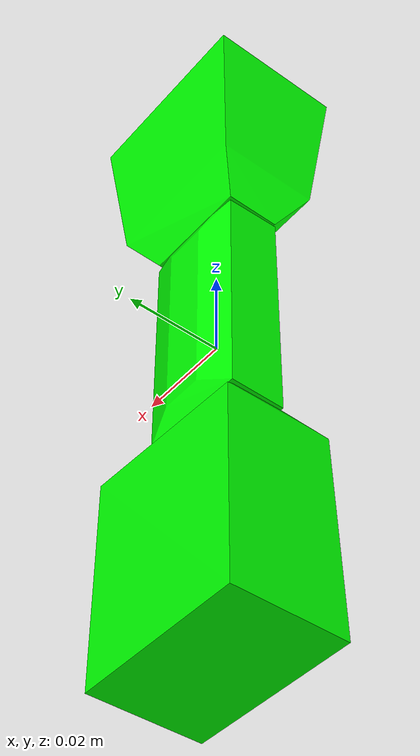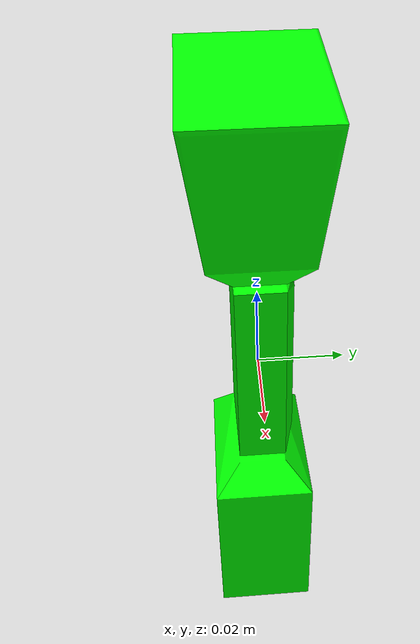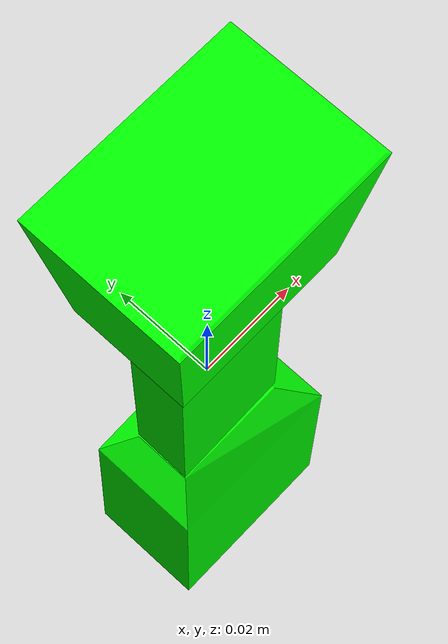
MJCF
<mujoco model="shapenetsem34">
  <asset>
    <mesh file="meshes/shapenetsem34/shapenetsem34_0.stl" name="shapenetsem34_0" scale="0.7 0.7 0.7"/>
    <mesh file="meshes/shapenetsem34/shapenetsem34_1.stl" name="shapenetsem34_1" scale="0.7 0.7 0.7"/>
    <mesh file="meshes/shapenetsem34/shapenetsem34_2.stl" name="shapenetsem34_2" scale="0.7 0.7 0.7"/>
  </asset>
  <worldbody>
    <body>
      <body name="collision">
        <geom pos="0 0 0" mesh="shapenetsem34_0" type="mesh" solimp="0.998 0.998 0.001" solref="0.001 1" density="100" friction="0.95 0.3 0.1" rgba="0 1 0 1" group="1" condim="4"/>
        <geom pos="0 0 0" mesh="shapenetsem34_1" type="mesh" solimp="0.998 0.998 0.001" solref="0.001 1" density="100" friction="0.95 0.3 0.1" rgba="0 1 0 1" group="1" condim="4"/>
        <geom pos="0 0 0" mesh="shapenetsem34_2" type="mesh" solimp="0.998 0.998 0.001" solref="0.001 1" density="100" friction="0.95 0.3 0.1" rgba="0 1 0 1" group="1" condim="4"/>
      </body>
      <body name="visual">
        <geom pos="0 0 0" mesh="shapenetsem34_0" type="mesh" rgba="0 1 0 1" conaffinity="0" contype="0" group="0" mass="0.0001"/>
        <geom pos="0 0 0" mesh="shapenetsem34_1" type="mesh" rgba="0 1 0 1" conaffinity="0" contype="0" group="0" mass="0.0001"/>
        <geom pos="0 0 0" mesh="shapenetsem34_2" type="mesh" rgba="0 1 0 1" conaffinity="0" contype="0" group="0" mass="0.0001"/>
      </body>
      <site rgba="0 0 0 0" size="0.005" pos="0 0 -0.06" name="bottom_site"/>
      <site rgba="0 0 0 0" size="0.005" pos="0 0 0.04" name="top_site"/>
      <site rgba="0 0 0 0" size="0.005" pos="0.025 0.025 0" name="horizontal_radius_site"/>
    </body>
  </worldbody>
</mujoco>
